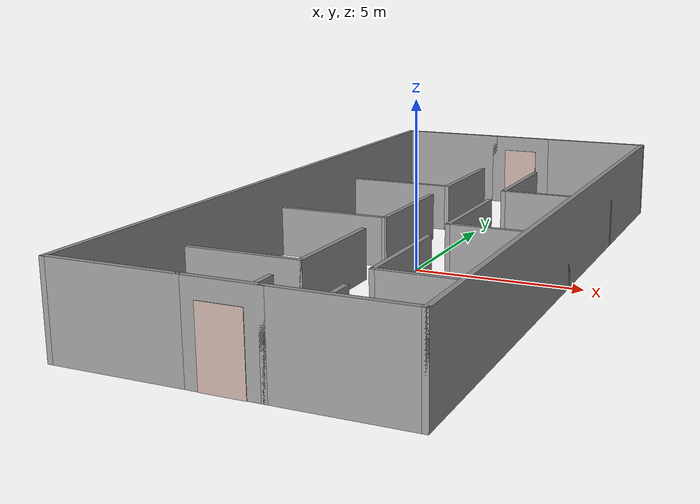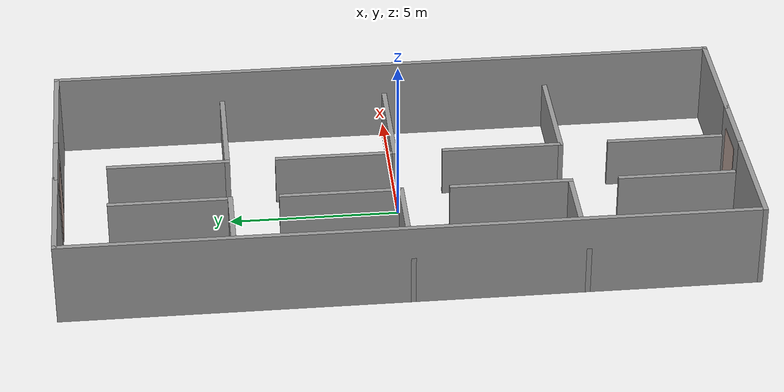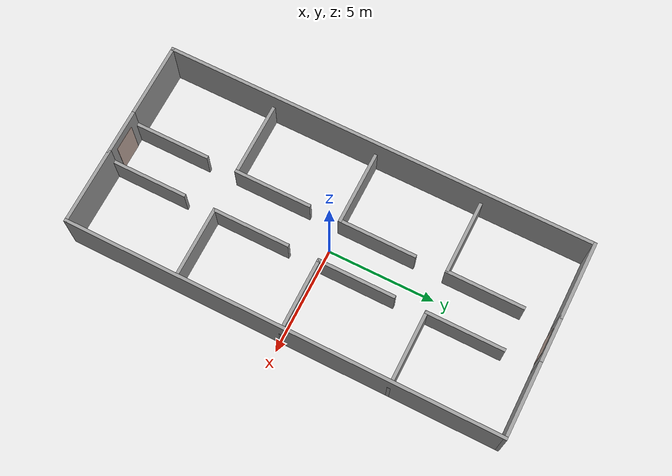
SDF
<?xml version='1.0'?>
<sdf version='1.7'>
  <model name='indoorShed'>
    <pose>0 0 0 0 -0 0</pose>
    <link name='Wall_0'>
      <collision name='Wall_0_Collision'>
        <geometry>
          <box>
            <size>2.15 0.15 2.5</size>
          </box>
        </geometry>
        <pose>0 0 1.25 0 -0 0</pose>
      </collision>
      <visual name='Wall_0_Visual'>
        <pose>0 0 1.25 0 -0 0</pose>
        <geometry>
          <box>
            <size>2.15 0.15 2.5</size>
          </box>
        </geometry>
        <material>
          <script>
            <uri>file://media/materials/scripts/gazebo.material</uri>
            <name>Gazebo/Grey</name>
          </script>
          <ambient>1 1 1 1</ambient>
        </material>
        <meta>
          <layer>0</layer>
        </meta>
      </visual>
      <pose>0 -10 0 0 -0 0</pose>
    </link>
    <link name='Wall_10'>
      <collision name='Wall_10_Collision'>
        <geometry>
          <box>
            <size>3.65 0.15 1.5</size>
          </box>
        </geometry>
        <pose>0 0 0.75 0 -0 0</pose>
      </collision>
      <visual name='Wall_10_Visual'>
        <pose>0 0 0.75 0 -0 0</pose>
        <geometry>
          <box>
            <size>3.65 0.15 1.5</size>
          </box>
        </geometry>
        <material>
          <script>
            <uri>file://media/materials/scripts/gazebo.material</uri>
            <name>Gazebo/Grey</name>
          </script>
          <ambient>1 1 1 1</ambient>
        </material>
        <meta>
          <layer>0</layer>
        </meta>
      </visual>
      <pose>-1 -3.25 0 0 -0 1.5708</pose>
    </link>
    <link name='Wall_13'>
      <collision name='Wall_13_Collision'>
        <geometry>
          <box>
            <size>3.65 0.15 1.5</size>
          </box>
        </geometry>
        <pose>0 0 0.75 0 -0 0</pose>
      </collision>
      <visual name='Wall_13_Visual'>
        <pose>0 0 0.75 0 -0 0</pose>
        <geometry>
          <box>
            <size>3.65 0.15 1.5</size>
          </box>
        </geometry>
        <material>
          <script>
            <uri>file://media/materials/scripts/gazebo.material</uri>
            <name>Gazebo/Grey</name>
          </script>
          <ambient>1 1 1 1</ambient>
        </material>
        <meta>
          <layer>0</layer>
        </meta>
      </visual>
      <pose>-2.75 0 0 0 -0 0</pose>
    </link>
    <link name='Wall_15'>
      <collision name='Wall_15_Collision'>
        <geometry>
          <box>
            <size>3.65 0.15 1.5</size>
          </box>
        </geometry>
        <pose>0 0 0.75 0 -0 0</pose>
      </collision>
      <visual name='Wall_15_Visual'>
        <pose>0 0 0.75 0 -0 0</pose>
        <geometry>
          <box>
            <size>3.65 0.15 1.5</size>
          </box>
        </geometry>
        <material>
          <script>
            <uri>file://media/materials/scripts/gazebo.material</uri>
            <name>Gazebo/Grey</name>
          </script>
          <ambient>1 1 1 1</ambient>
        </material>
        <meta>
          <layer>0</layer>
        </meta>
      </visual>
      <pose>-1 1.75 0 0 -0 1.5708</pose>
    </link>
    <link name='Wall_17'>
      <collision name='Wall_17_Collision'>
        <geometry>
          <box>
            <size>3.65 0.15 1.5</size>
          </box>
        </geometry>
        <pose>0 0 0.75 0 -0 0</pose>
      </collision>
      <visual name='Wall_17_Visual'>
        <pose>0 0 0.75 0 -0 0</pose>
        <geometry>
          <box>
            <size>3.65 0.15 1.5</size>
          </box>
        </geometry>
        <material>
          <script>
            <uri>file://media/materials/scripts/gazebo.material</uri>
            <name>Gazebo/Grey</name>
          </script>
          <ambient>1 1 1 1</ambient>
        </material>
        <meta>
          <layer>0</layer>
        </meta>
      </visual>
      <pose>-2.75 5 0 0 -0 0</pose>
    </link>
    <link name='Wall_19'>
      <collision name='Wall_19_Collision'>
        <geometry>
          <box>
            <size>3.65 0.15 2.5</size>
          </box>
        </geometry>
        <pose>0 0 1.25 0 -0 0</pose>
      </collision>
      <visual name='Wall_19_Visual'>
        <pose>0 0 1.25 0 -0 0</pose>
        <geometry>
          <box>
            <size>3.65 0.15 2.5</size>
          </box>
        </geometry>
        <material>
          <script>
            <uri>file://media/materials/scripts/gazebo.material</uri>
            <name>Gazebo/Grey</name>
          </script>
          <ambient>1 1 1 1</ambient>
        </material>
        <meta>
          <layer>0</layer>
        </meta>
      </visual>
      <pose>-2.75 10 0 0 -0 0</pose>
    </link>
    <link name='Wall_2'>
      <collision name='Wall_2_Collision'>
        <geometry>
          <box>
            <size>3.65 0.15 1.5</size>
          </box>
        </geometry>
        <pose>0 0 0.75 0 -0 0</pose>
      </collision>
      <visual name='Wall_2_Visual'>
        <pose>0 0 0.75 0 -0 0</pose>
        <geometry>
          <box>
            <size>3.65 0.15 1.5</size>
          </box>
        </geometry>
        <material>
          <script>
            <uri>file://media/materials/scripts/gazebo.material</uri>
            <name>Gazebo/Grey</name>
          </script>
          <ambient>1 1 1 1</ambient>
        </material>
        <meta>
          <layer>0</layer>
        </meta>
      </visual>
      <pose>-1 -8.25 0 0 -0 1.5708</pose>
    </link>
    <link name='Wall_21'>
      <collision name='Wall_21_Collision'>
        <geometry>
          <box>
            <size>3.65 0.15 1.5</size>
          </box>
        </geometry>
        <pose>0 0 0.75 0 -0 0</pose>
      </collision>
      <visual name='Wall_21_Visual'>
        <pose>0 0 0.75 0 -0 0</pose>
        <geometry>
          <box>
            <size>3.65 0.15 1.5</size>
          </box>
        </geometry>
        <material>
          <script>
            <uri>file://media/materials/scripts/gazebo.material</uri>
            <name>Gazebo/Grey</name>
          </script>
          <ambient>1 1 1 1</ambient>
        </material>
        <meta>
          <layer>0</layer>
        </meta>
      </visual>
      <pose>-1 6.75 0 0 -0 1.5708</pose>
    </link>
    <link name='Wall_23'>
      <collision name='Wall_23_Collision'>
        <geometry>
          <box>
            <size>3.65 0.15 1.5</size>
          </box>
        </geometry>
        <pose>0 0 0.75 0 -0 0</pose>
      </collision>
      <visual name='Wall_23_Visual'>
        <pose>0 0 0.75 0 -0 0</pose>
        <geometry>
          <box>
            <size>3.65 0.15 1.5</size>
          </box>
        </geometry>
        <material>
          <script>
            <uri>file://media/materials/scripts/gazebo.material</uri>
            <name>Gazebo/Grey</name>
          </script>
          <ambient>1 1 1 1</ambient>
        </material>
        <meta>
          <layer>0</layer>
        </meta>
      </visual>
      <pose>1 -8.25 0 0 -0 1.5708</pose>
    </link>
    <link name='Wall_25'>
      <collision name='Wall_25_Collision'>
        <geometry>
          <box>
            <size>3.65 0.15 2.5</size>
          </box>
        </geometry>
        <pose>0 0 1.25 0 -0 0</pose>
      </collision>
      <visual name='Wall_25_Visual'>
        <pose>0 0 1.25 0 -0 0</pose>
        <geometry>
          <box>
            <size>3.65 0.15 2.5</size>
          </box>
        </geometry>
        <material>
          <script>
            <uri>file://media/materials/scripts/gazebo.material</uri>
            <name>Gazebo/Grey</name>
          </script>
          <ambient>1 1 1 1</ambient>
        </material>
        <meta>
          <layer>0</layer>
        </meta>
      </visual>
      <pose>2.75 -10 0 0 -0 0</pose>
    </link>
    <link name='Wall_27'>
      <collision name='Wall_27_Collision'>
        <geometry>
          <box>
            <size>20.15 0.15 2.5</size>
          </box>
        </geometry>
        <pose>0 0 1.25 0 -0 0</pose>
      </collision>
      <visual name='Wall_27_Visual'>
        <pose>0 0 1.25 0 -0 0</pose>
        <geometry>
          <box>
            <size>20.15 0.15 2.5</size>
          </box>
        </geometry>
        <material>
          <script>
            <uri>file://media/materials/scripts/gazebo.material</uri>
            <name>Gazebo/Grey</name>
          </script>
          <ambient>1 1 1 1</ambient>
        </material>
        <meta>
          <layer>0</layer>
        </meta>
      </visual>
      <pose>4.5 0 0 0 -0 1.5708</pose>
    </link>
    <link name='Wall_29'>
      <collision name='Wall_29_Collision'>
        <geometry>
          <box>
            <size>3.65 0.15 1.5</size>
          </box>
        </geometry>
        <pose>0 0 0.75 0 -0 0</pose>
      </collision>
      <visual name='Wall_29_Visual'>
        <pose>0 0 0.75 0 -0 0</pose>
        <geometry>
          <box>
            <size>3.65 0.15 1.5</size>
          </box>
        </geometry>
        <material>
          <script>
            <uri>file://media/materials/scripts/gazebo.material</uri>
            <name>Gazebo/Grey</name>
          </script>
          <ambient>1 1 1 1</ambient>
        </material>
        <meta>
          <layer>0</layer>
        </meta>
      </visual>
      <pose>2.75 -5 0 0 -0 3.14159</pose>
    </link>
    <link name='Wall_31'>
      <collision name='Wall_31_Collision'>
        <geometry>
          <box>
            <size>3.65 0.15 1.5</size>
          </box>
        </geometry>
        <pose>0 0 0.75 0 -0 0</pose>
      </collision>
      <visual name='Wall_31_Visual'>
        <pose>0 0 0.75 0 -0 0</pose>
        <geometry>
          <box>
            <size>3.65 0.15 1.5</size>
          </box>
        </geometry>
        <material>
          <script>
            <uri>file://media/materials/scripts/gazebo.material</uri>
            <name>Gazebo/Grey</name>
          </script>
          <ambient>1 1 1 1</ambient>
        </material>
        <meta>
          <layer>0</layer>
        </meta>
      </visual>
      <pose>1 -3.25 0 0 -0 1.5708</pose>
    </link>
    <link name='Wall_33'>
      <collision name='Wall_33_Collision'>
        <geometry>
          <box>
            <size>3.65 0.15 1.5</size>
          </box>
        </geometry>
        <pose>0 0 0.75 0 -0 0</pose>
      </collision>
      <visual name='Wall_33_Visual'>
        <pose>0 0 0.75 0 -0 0</pose>
        <geometry>
          <box>
            <size>3.65 0.15 1.5</size>
          </box>
        </geometry>
        <material>
          <script>
            <uri>file://media/materials/scripts/gazebo.material</uri>
            <name>Gazebo/Grey</name>
          </script>
          <ambient>1 1 1 1</ambient>
        </material>
        <meta>
          <layer>0</layer>
        </meta>
      </visual>
      <pose>2.75 0 0 0 -0 3.14159</pose>
    </link>
    <link name='Wall_35'>
      <collision name='Wall_35_Collision'>
        <geometry>
          <box>
            <size>3.65 0.15 1.5</size>
          </box>
        </geometry>
        <pose>0 0 0.75 0 -0 0</pose>
      </collision>
      <visual name='Wall_35_Visual'>
        <pose>0 0 0.75 0 -0 0</pose>
        <geometry>
          <box>
            <size>3.65 0.15 1.5</size>
          </box>
        </geometry>
        <material>
          <script>
            <uri>file://media/materials/scripts/gazebo.material</uri>
            <name>Gazebo/Grey</name>
          </script>
          <ambient>1 1 1 1</ambient>
        </material>
        <meta>
          <layer>0</layer>
        </meta>
      </visual>
      <pose>1 1.75 0 0 -0 1.5708</pose>
    </link>
    <link name='Wall_37'>
      <collision name='Wall_37_Collision'>
        <geometry>
          <box>
            <size>3.65 0.15 1.5</size>
          </box>
        </geometry>
        <pose>0 0 0.75 0 -0 0</pose>
      </collision>
      <visual name='Wall_37_Visual'>
        <pose>0 0 0.75 0 -0 0</pose>
        <geometry>
          <box>
            <size>3.65 0.15 1.5</size>
          </box>
        </geometry>
        <material>
          <script>
            <uri>file://media/materials/scripts/gazebo.material</uri>
            <name>Gazebo/Grey</name>
          </script>
          <ambient>1 1 1 1</ambient>
        </material>
        <meta>
          <layer>0</layer>
        </meta>
      </visual>
      <pose>2.75 5 0 0 -0 3.14159</pose>
    </link>
    <link name='Wall_39'>
      <collision name='Wall_39_Collision'>
        <geometry>
          <box>
            <size>3.65 0.15 1.5</size>
          </box>
        </geometry>
        <pose>0 0 0.75 0 -0 0</pose>
      </collision>
      <visual name='Wall_39_Visual'>
        <pose>0 0 0.75 0 -0 0</pose>
        <geometry>
          <box>
            <size>3.65 0.15 1.5</size>
          </box>
        </geometry>
        <material>
          <script>
            <uri>file://media/materials/scripts/gazebo.material</uri>
            <name>Gazebo/Grey</name>
          </script>
          <ambient>1 1 1 1</ambient>
        </material>
        <meta>
          <layer>0</layer>
        </meta>
      </visual>
      <pose>1 6.75 0 0 -0 1.5708</pose>
    </link>
    <link name='Wall_4'>
      <collision name='Wall_4_Collision'>
        <geometry>
          <box>
            <size>3.65 0.15 2.5</size>
          </box>
        </geometry>
        <pose>0 0 1.25 0 -0 0</pose>
      </collision>
      <visual name='Wall_4_Visual'>
        <pose>0 0 1.25 0 -0 0</pose>
        <geometry>
          <box>
            <size>3.65 0.15 2.5</size>
          </box>
        </geometry>
        <material>
          <script>
            <uri>file://media/materials/scripts/gazebo.material</uri>
            <name>Gazebo/Grey</name>
          </script>
          <ambient>1 1 1 1</ambient>
        </material>
        <meta>
          <layer>0</layer>
        </meta>
      </visual>
      <pose>-2.75 -10 0 0 -0 3.14159</pose>
    </link>
    <link name='Wall_41'>
      <collision name='Wall_41_Collision'>
        <geometry>
          <box>
            <size>3.65 0.15 2.5</size>
          </box>
        </geometry>
        <pose>0 0 1.25 0 -0 0</pose>
      </collision>
      <visual name='Wall_41_Visual'>
        <pose>0 0 1.25 0 -0 0</pose>
        <geometry>
          <box>
            <size>3.65 0.15 2.5</size>
          </box>
        </geometry>
        <material>
          <script>
            <uri>file://media/materials/scripts/gazebo.material</uri>
            <name>Gazebo/Grey</name>
          </script>
          <ambient>1 1 1 1</ambient>
        </material>
        <meta>
          <layer>0</layer>
        </meta>
      </visual>
      <pose>2.75 10 0 0 -0 3.14159</pose>
    </link>
    <link name='Wall_43'>
      <collision name='Wall_43_Collision'>
        <geometry>
          <box>
            <size>1.18 0.18 2</size>
          </box>
        </geometry>
        <pose>0 0 1 0 -0 0</pose>
      </collision>
      <visual name='Wall_43_Visual'>
        <pose>0 0 1 0 -0 0</pose>
        <geometry>
          <box>
            <size>1.18 0.18 2</size>
          </box>
        </geometry>
        <material>
          <script>
            <uri>file://media/materials/scripts/gazebo.material</uri>
            <name>Gazebo/Grey</name>
          </script>
          <ambient>0.760784 0.662745 0.627451 1</ambient>
        </material>
        <meta>
          <layer>0</layer>
        </meta>
      </visual>
      <pose>0 -10 0 0 -0 0</pose>
    </link>
    <link name='Wall_45'>
      <collision name='Wall_45_Collision'>
        <geometry>
          <box>
            <size>2.15 0.15 2.5</size>
          </box>
        </geometry>
        <pose>0 0 1.25 0 -0 0</pose>
      </collision>
      <visual name='Wall_45_Visual'>
        <pose>0 0 1.25 0 -0 0</pose>
        <geometry>
          <box>
            <size>2.15 0.15 2.5</size>
          </box>
        </geometry>
        <material>
          <script>
            <uri>file://media/materials/scripts/gazebo.material</uri>
            <name>Gazebo/Grey</name>
          </script>
          <ambient>1 1 1 1</ambient>
        </material>
        <meta>
          <layer>0</layer>
        </meta>
      </visual>
      <pose>0 10 0 0 -0 0</pose>
    </link>
    <link name='Wall_47'>
      <collision name='Wall_47_Collision'>
        <geometry>
          <box>
            <size>1.18 0.18 2</size>
          </box>
        </geometry>
        <pose>0 0 1 0 -0 0</pose>
      </collision>
      <visual name='Wall_47_Visual'>
        <pose>0 0 1 0 -0 0</pose>
        <geometry>
          <box>
            <size>1.18 0.18 2</size>
          </box>
        </geometry>
        <material>
          <script>
            <uri>file://media/materials/scripts/gazebo.material</uri>
            <name>Gazebo/Grey</name>
          </script>
          <ambient>0.760784 0.662745 0.627451 1</ambient>
        </material>
        <meta>
          <layer>0</layer>
        </meta>
      </visual>
      <pose>0 10 0 0 -0 0</pose>
    </link>
    <link name='Wall_6'>
      <collision name='Wall_6_Collision'>
        <geometry>
          <box>
            <size>20.15 0.15 2.5</size>
          </box>
        </geometry>
        <pose>0 0 1.25 0 -0 0</pose>
      </collision>
      <visual name='Wall_6_Visual'>
        <pose>0 0 1.25 0 -0 0</pose>
        <geometry>
          <box>
            <size>20.15 0.15 2.5</size>
          </box>
        </geometry>
        <material>
          <script>
            <uri>file://media/materials/scripts/gazebo.material</uri>
            <name>Gazebo/Grey</name>
          </script>
          <ambient>1 1 1 1</ambient>
        </material>
        <meta>
          <layer>0</layer>
        </meta>
      </visual>
      <pose>-4.5 0 0 0 -0 1.5708</pose>
    </link>
    <link name='Wall_8'>
      <collision name='Wall_8_Collision'>
        <geometry>
          <box>
            <size>3.65 0.15 1.5</size>
          </box>
        </geometry>
        <pose>0 0 0.75 0 -0 0</pose>
      </collision>
      <visual name='Wall_8_Visual'>
        <pose>0 0 0.75 0 -0 0</pose>
        <geometry>
          <box>
            <size>3.65 0.15 1.5</size>
          </box>
        </geometry>
        <material>
          <script>
            <uri>file://media/materials/scripts/gazebo.material</uri>
            <name>Gazebo/Grey</name>
          </script>
          <ambient>1 1 1 1</ambient>
        </material>
        <meta>
          <layer>0</layer>
        </meta>
      </visual>
      <pose>-2.75 -5 0 0 -0 0</pose>
    </link>
    <static>1</static>
  </model>
</sdf>
